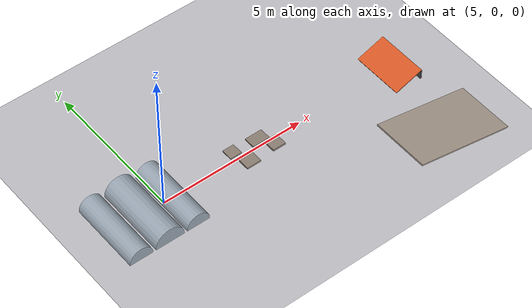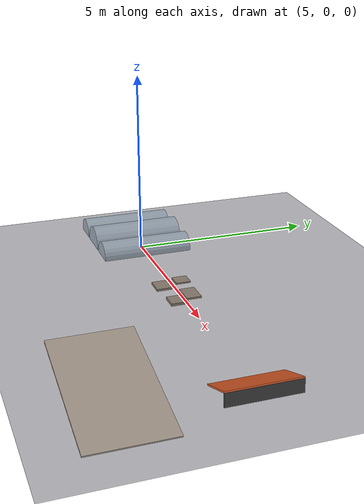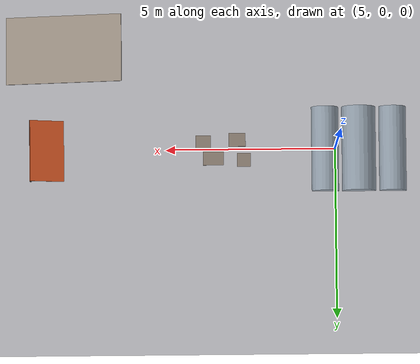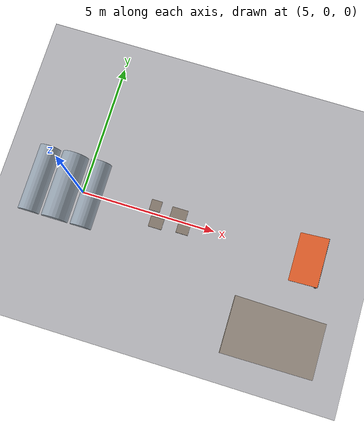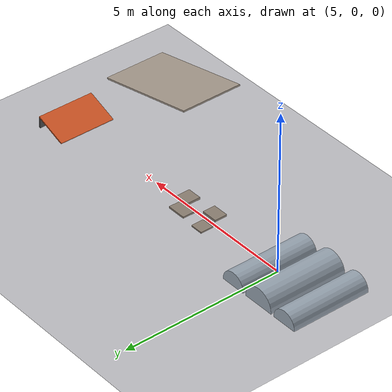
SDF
<?xml version="1.0" ?>
<sdf version="1.8">
  <world name="skatepark">
    <!-- ================= Physics Settings ================= -->
    <physics name="1ms" type="ignored">
      <max_step_size>0.001</max_step_size>
      <real_time_factor>1.0</real_time_factor>
    </physics>

    <!-- ================= Gazebo Harmonic Plugins ================= -->
    <plugin filename="gz-sim-physics-system" name="gz::sim::systems::Physics" />
    <plugin filename="gz-sim-user-commands-system" name="gz::sim::systems::UserCommands" />
    <plugin filename="gz-sim-scene-broadcaster-system" name="gz::sim::systems::SceneBroadcaster" />
    <plugin filename="gz-sim-sensors-system" name="gz::sim::systems::Sensors">
      <render_engine>ogre2</render_engine>
    </plugin>
    <plugin filename="gz-sim-imu-system" name="gz::sim::systems::Imu" />

    <!-- ================= Gravity & Sun ================= -->
    <gravity>0 0 -9.81</gravity>

    <light type="directional" name="sun">
      <cast_shadows>true</cast_shadows>
      <pose>0 0 20 0 0 0</pose>
      <diffuse>0.85 0.85 0.85 1</diffuse>
      <specular>0.25 0.25 0.25 1</specular>
      <direction>-0.4 0.2 -0.9</direction>
    </light>

    <!-- ================= Zone 1: Main Flat Ground ================= -->
    <model name="ground_plane">
      <static>true</static>
      <link name="ground_link">
        <collision name="ground_collision">
          <geometry>
            <plane>
              <normal>0 0 1</normal>
              <size>100 100</size>
            </plane>
          </geometry>
          <surface>
            <friction>
              <ode>
                <mu>1.0</mu>
                <mu2>1.0</mu2>
              </ode>
            </friction>
          </surface>
        </collision>
        <visual name="ground_visual">
          <geometry>
            <plane>
              <normal>0 0 1</normal>
              <size>100 100</size>
            </plane>
          </geometry>
          <material>
            <ambient>0.75 0.75 0.77 1</ambient>
            <diffuse>0.75 0.75 0.77 1</diffuse>
            <specular>0.2 0.2 0.2 1</specular>
          </material>
        </visual>
      </link>
    </model>

    <!-- ================= Zone 2: Gentle Undulating Bumps ================= -->
    <!-- Bumps along x = 3.0 to 6.5 m (amplitude 2.5 - 3.5 cm) -->
    <model name="gentle_bumps">
      <static>true</static>
      <pose>4.5 0 0 0 0 0</pose>
      <link name="bumps_link">
        <!-- Bump 1 -->
        <collision name="bump_1_col">
          <pose>-1.2 0 0.015 0 0 0</pose>
          <geometry>
            <cylinder>
              <radius>0.4</radius>
              <length>2.5</length>
            </cylinder>
          </geometry>
        </collision>
        <visual name="bump_1_vis">
          <pose>-1.2 0 0.015 0 1.5707963 1.5707963</pose>
          <geometry>
            <cylinder>
              <radius>0.4</radius>
              <length>2.5</length>
            </cylinder>
          </geometry>
          <material>
            <ambient>0.6 0.65 0.7 1</ambient>
            <diffuse>0.6 0.65 0.7 1</diffuse>
          </material>
        </visual>

        <!-- Bump 2 -->
        <collision name="bump_2_col">
          <pose>-0.2 0 0.02 0 0 0</pose>
          <geometry>
            <cylinder>
              <radius>0.5</radius>
              <length>2.5</length>
            </cylinder>
          </geometry>
        </collision>
        <visual name="bump_2_vis">
          <pose>-0.2 0 0.02 0 1.5707963 1.5707963</pose>
          <geometry>
            <cylinder>
              <radius>0.5</radius>
              <length>2.5</length>
            </cylinder>
          </geometry>
          <material>
            <ambient>0.6 0.65 0.7 1</ambient>
            <diffuse>0.6 0.65 0.7 1</diffuse>
          </material>
        </visual>

        <!-- Bump 3 -->
        <collision name="bump_3_col">
          <pose>0.8 0 0.015 0 0 0</pose>
          <geometry>
            <cylinder>
              <radius>0.4</radius>
              <length>2.5</length>
            </cylinder>
          </geometry>
        </collision>
        <visual name="bump_3_vis">
          <pose>0.8 0 0.015 0 1.5707963 1.5707963</pose>
          <geometry>
            <cylinder>
              <radius>0.4</radius>
              <length>2.5</length>
            </cylinder>
          </geometry>
          <material>
            <ambient>0.6 0.65 0.7 1</ambient>
            <diffuse>0.6 0.65 0.7 1</diffuse>
          </material>
        </visual>
      </link>
    </model>

    <!-- ================= Zone 3: Rough Uneven Blocks ================= -->
    <!-- Non-uniform stepping blocks testing asymmetrical wheel disturbance -->
    <model name="rough_terrain">
      <static>true</static>
      <pose>8.5 0 0 0 0 0</pose>
      <link name="rough_link">
        <collision name="block_1_col">
          <pose>-0.8 0.3 0.02 0 0 0</pose>
          <geometry><box><size>0.4 0.4 0.04</size></box></geometry>
        </collision>
        <visual name="block_1_vis">
          <pose>-0.8 0.3 0.02 0 0 0</pose>
          <geometry><box><size>0.4 0.4 0.04</size></box></geometry>
          <material><ambient>0.55 0.5 0.45 1</ambient><diffuse>0.55 0.5 0.45 1</diffuse></material>
        </visual>

        <collision name="block_2_col">
          <pose>-0.6 -0.3 0.03 0 0 0</pose>
          <geometry><box><size>0.5 0.4 0.06</size></box></geometry>
        </collision>
        <visual name="block_2_vis">
          <pose>-0.6 -0.3 0.03 0 0 0</pose>
          <geometry><box><size>0.5 0.4 0.06</size></box></geometry>
          <material><ambient>0.55 0.5 0.45 1</ambient><diffuse>0.55 0.5 0.45 1</diffuse></material>
        </visual>

        <collision name="block_3_col">
          <pose>0.1 0.25 0.025 0 0 0</pose>
          <geometry><box><size>0.6 0.4 0.05</size></box></geometry>
        </collision>
        <visual name="block_3_vis">
          <pose>0.1 0.25 0.025 0 0 0</pose>
          <geometry><box><size>0.6 0.4 0.05</size></box></geometry>
          <material><ambient>0.55 0.5 0.45 1</ambient><diffuse>0.55 0.5 0.45 1</diffuse></material>
        </visual>

        <collision name="block_4_col">
          <pose>0.4 -0.2 0.035 0 0 0</pose>
          <geometry><box><size>0.45 0.45 0.07</size></box></geometry>
        </collision>
        <visual name="block_4_vis">
          <pose>0.4 -0.2 0.035 0 0 0</pose>
          <geometry><box><size>0.45 0.45 0.07</size></box></geometry>
          <material><ambient>0.55 0.5 0.45 1</ambient><diffuse>0.55 0.5 0.45 1</diffuse></material>
        </visual>
      </link>
    </model>

    <!-- ================= Zone 4: Slope Incline ================= -->
    <!-- 12-degree incline slope (3.5 m long) -->
    <model name="slope_incline">
      <static>true</static>
      <pose>13.0 -3.0 0 0 0 0</pose>
      <link name="slope_link">
        <!-- Incline plane (angle 0.2094 rad ~ 12 deg, length 3.5 m) -->
        <collision name="slope_col">
          <pose>0 0 0.36 0 0.2094 0</pose>
          <geometry><box><size>3.5 2.0 0.05</size></box></geometry>
        </collision>
        <visual name="slope_vis">
          <pose>0 0 0.36 0 0.2094 0</pose>
          <geometry><box><size>3.5 2.0 0.05</size></box></geometry>
          <material><ambient>0.65 0.6 0.55 1</ambient><diffuse>0.65 0.6 0.55 1</diffuse></material>
        </visual>
      </link>
    </model>

    <!-- ================= Zone 5: Jump Ramp (20 deg, 0.35m height) ================= -->
    <!-- Lip height 0.35 m, incline angle 20 deg (0.349 rad), ramp length = 0.35 / sin(20 deg) = 1.023 m -->
    <model name="jump_ramp">
      <static>true</static>
      <pose>14.0 0 0 0 0 0</pose>
      <link name="ramp_link">
        <!-- Ramp board tilted at 20 deg (0.3491 rad) -->
        <!-- Center of ramp board is at x = -0.48, z = 0.175 -->
        <collision name="ramp_col">
          <pose>-0.48 0 0.175 0 -0.3491 0</pose>
          <geometry><box><size>1.05 1.8 0.04</size></box></geometry>
          <surface>
            <friction>
              <ode>
                <mu>1.2</mu>
                <mu2>1.2</mu2>
              </ode>
            </friction>
          </surface>
        </collision>
        <visual name="ramp_vis">
          <pose>-0.48 0 0.175 0 -0.3491 0</pose>
          <geometry><box><size>1.05 1.8 0.04</size></box></geometry>
          <material>
            <ambient>0.85 0.35 0.15 1</ambient>
            <diffuse>0.85 0.35 0.15 1</diffuse>
          </material>
        </visual>

        <!-- Vertical lip backing support at x = 0.0 -->
        <collision name="lip_support_col">
          <pose>0.0 0 0.17 0 0 0</pose>
          <geometry><box><size>0.05 1.8 0.34</size></box></geometry>
        </collision>
        <visual name="lip_support_vis">
          <pose>0.0 0 0.17 0 0 0</pose>
          <geometry><box><size>0.05 1.8 0.34</size></box></geometry>
          <material><ambient>0.3 0.3 0.3 1</ambient><diffuse>0.3 0.3 0.3 1</diffuse></material>
        </visual>
      </link>
    </model>

  </world>
</sdf>
